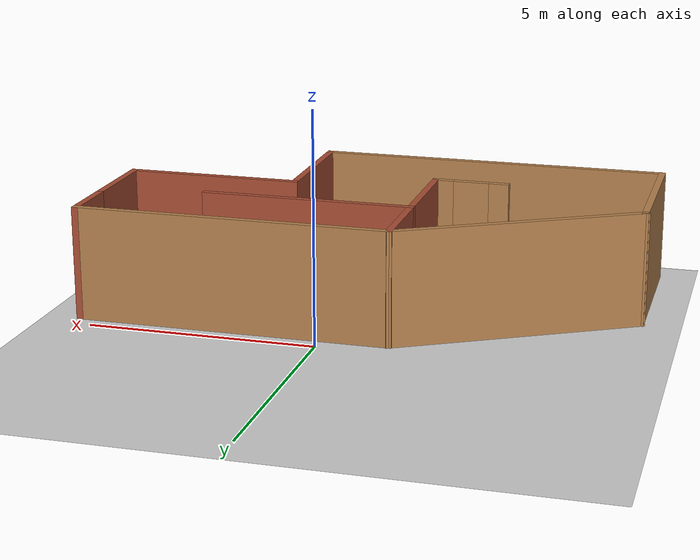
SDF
<sdf version="1.7">
 <world name="default">
  <light name="sun" type="directional">
   <pose>0 0 10 0 -0 0</pose>
   <diffuse>0.8 0.8 0.8 1</diffuse>
   <specular>0.2 0.2 0.2 1</specular>
   <attenuation>
    <range>1000</range>
    <constant>0.9</constant>
    <linear>0.01</linear>
    <quadratic>0.001</quadratic>
   </attenuation>
   <direction>-0.5 0.1 -0.9</direction>
   <spot><inner_angle>0</inner_angle><outer_angle>0</outer_angle><falloff>0</falloff></spot>
  </light>
  <model name="ground_plane">
   <static>1</static>
   <link name="link">
    <collision name="collision">
     <geometry><plane><normal>0 0 1</normal><size>100 100</size></plane></geometry>
     <surface><friction><ode><mu>100</mu><mu2>50</mu2></ode></friction></surface>
    </collision>
    <visual name="visual">
     <cast_shadows>0</cast_shadows>
     <geometry><plane><normal>0 0 1</normal><size>100 100</size></plane></geometry>
     <material>
      <script><uri>file://media/materials/scripts/gazebo.material</uri><name>Gazebo/Grey</name></script>
     </material>
    </visual>
   </link>
  </model>
  <gravity>0 0 -9.8</gravity>
  <magnetic_field>6e-06 2.3e-05 -4.2e-05</magnetic_field>
  <atmosphere type="adiabatic"/>
  <physics type="ode">
   <max_step_size>0.001</max_step_size>
   <real_time_factor>1</real_time_factor>
   <real_time_update_rate>1000</real_time_update_rate>
  </physics>
  <scene><ambient>0.4 0.4 0.4 1</ambient><background>0.7 0.7 0.7 1</background><shadows>1</shadows></scene>
  <audio><device>default</device></audio>
  <spherical_coordinates>
   <surface_model>EARTH_WGS84</surface_model>
   <latitude_deg>0</latitude_deg>
   <longitude_deg>0</longitude_deg>
   <elevation>0</elevation>
   <heading_deg>0</heading_deg>
  </spherical_coordinates>
  <model name="walls">
   <pose>-0.483505 -3.2575 0 0 -0 0</pose>
   <link name="Wall_0">
    <collision name="Wall_0_Collision">
     <geometry><box><size>3.5 0.15 2.5</size></box></geometry>
     <pose>0 0 1.25 0 -0 0</pose>
    </collision>
    <visual name="Wall_0_Visual">
     <pose>0 0 1.25 0 -0 0</pose>
     <geometry><box><size>3.5 0.15 2.5</size></box></geometry>
     <material>
      <script><uri>file://media/materials/scripts/gazebo.material</uri><name>Gazebo/Wood</name></script>
      <ambient>1 1 1 1</ambient>
     </material>
     <meta><layer>0</layer></meta>
    </visual>
    <pose>-5.8365 -1.5075 0 0 -0 -1.5708</pose>
   </link>
   <link name="Wall_1">
    <collision name="Wall_1_Collision">
     <geometry><box><size>8 0.15 2.5</size></box></geometry>
     <pose>0 0 1.25 0 -0 0</pose>
    </collision>
    <visual name="Wall_1_Visual">
     <pose>0 0 1.25 0 -0 0</pose>
     <geometry><box><size>8 0.15 2.5</size></box></geometry>
     <material>
      <script><uri>file://media/materials/scripts/gazebo.material</uri><name>Gazebo/Wood</name></script>
      <ambient>1 1 1 1</ambient>
     </material>
     <meta><layer>0</layer></meta>
    </visual>
    <pose>-1.91149 -3.1825 0 0 -0 0</pose>
   </link>
   <link name="Wall_10">
    <collision name="Wall_10_Collision">
     <geometry><box><size>2.5 0.15 2.5</size></box></geometry>
     <pose>0 0 1.25 0 -0 0</pose>
    </collision>
    <visual name="Wall_10_Visual">
     <pose>0 0 1.25 0 -0 0</pose>
     <geometry><box><size>2.5 0.15 2.5</size></box></geometry>
     <material>
      <script><uri>file://media/materials/scripts/gazebo.material</uri><name>Gazebo/Bricks</name></script>
      <ambient>1 1 1 1</ambient>
     </material>
     <meta><layer>0</layer></meta>
    </visual>
    <pose>-0.986495 -0.1575 0 0 -0 -1.5708</pose>
   </link>
   <link name="Wall_11">
    <pose>-1.78649 -1.3325 0 0 -0 3.14159</pose>
    <visual name="Wall_11_Visual_0">
     <pose>-0.6275 0 1.25 0 -0 0</pose>
     <geometry><box><size>0.495 0.15 2.5</size></box></geometry>
     <material>
      <script><uri>file://media/materials/scripts/gazebo.material</uri><name>Gazebo/Wood</name></script>
      <ambient>1 1 1 1</ambient>
     </material>
     <meta><layer>0</layer></meta>
    </visual>
    <collision name="Wall_11_Collision_0">
     <geometry><box><size>0.495 0.15 2.5</size></box></geometry>
     <pose>-0.6275 0 1.25 0 -0 0</pose>
    </collision>
    <visual name="Wall_11_Visual_1">
     <pose>0.2475 0 0.25 0 -0 0</pose>
     <geometry><box><size>1.255 0.15 0.5</size></box></geometry>
     <material>
      <script><uri>file://media/materials/scripts/gazebo.material</uri><name>Gazebo/Wood</name></script>
      <ambient>1 1 1 1</ambient>
     </material>
     <meta><layer>0</layer></meta>
    </visual>
    <collision name="Wall_11_Collision_1">
     <geometry><box><size>1.255 0.15 0.5</size></box></geometry>
     <pose>0.2475 0 0.25 0 -0 0</pose>
    </collision>
    <visual name="Wall_11_Visual_2">
     <pose>0.6475 0 1.5 0 -0 0</pose>
     <geometry><box><size>0.455 0.15 2</size></box></geometry>
     <material>
      <script><uri>file://media/materials/scripts/gazebo.material</uri><name>Gazebo/Wood</name></script>
      <ambient>1 1 1 1</ambient>
     </material>
     <meta><layer>0</layer></meta>
    </visual>
    <collision name="Wall_11_Collision_2">
     <geometry><box><size>0.455 0.15 2</size></box></geometry>
     <pose>0.6475 0 1.5 0 -0 0</pose>
    </collision>
    <visual name="Wall_11_Visual_3">
     <pose>0.02 0 1.9 0 -0 0</pose>
     <geometry><box><size>0.8 0.15 1.2</size></box></geometry>
     <material>
      <script><uri>file://media/materials/scripts/gazebo.material</uri><name>Gazebo/Wood</name></script>
      <ambient>1 1 1 1</ambient>
     </material>
     <meta><layer>0</layer></meta>
    </visual>
    <collision name="Wall_11_Collision_3">
     <geometry><box><size>0.8 0.15 1.2</size></box></geometry>
     <pose>0.02 0 1.9 0 -0 0</pose>
    </collision>
   </link>
   <link name="Wall_13">
    <collision name="Wall_13_Collision">
     <geometry><box><size>5.7009 0.15 2.5</size></box></geometry>
     <pose>0 0 1.25 0 -0 0</pose>
    </collision>
    <visual name="Wall_13_Visual">
     <pose>0 0 1.25 0 -0 0</pose>
     <geometry><box><size>5.7009 0.15 2.5</size></box></geometry>
     <material>
      <script><uri>file://media/materials/scripts/gazebo.material</uri><name>Gazebo/Wood</name></script>
      <ambient>1 1 1 1</ambient>
     </material>
     <meta><layer>0</layer></meta>
    </visual>
    <pose>-3.41149 1.5175 0 0 -0 0.507973</pose>
   </link>
   <link name="Wall_2">
    <collision name="Wall_2_Collision">
     <geometry><box><size>3 0.15 2.5</size></box></geometry>
     <pose>0 0 1.25 0 -0 0</pose>
    </collision>
    <visual name="Wall_2_Visual">
     <pose>0 0 1.25 0 -0 0</pose>
     <geometry><box><size>3 0.15 2.5</size></box></geometry>
     <material>
      <script><uri>file://media/materials/scripts/gazebo.material</uri><name>Gazebo/Bricks</name></script>
      <ambient>1 1 1 1</ambient>
     </material>
     <meta><layer>0</layer></meta>
    </visual>
    <pose>2.0135 -1.7575 0 0 -0 1.5708</pose>
   </link>
   <link name="Wall_3">
    <collision name="Wall_3_Collision">
     <geometry><box><size>4 0.15 2.5</size></box></geometry>
     <pose>0 0 1.25 0 -0 0</pose>
    </collision>
    <visual name="Wall_3_Visual">
     <pose>0 0 1.25 0 -0 0</pose>
     <geometry><box><size>4 0.15 2.5</size></box></geometry>
     <material>
      <script><uri>file://media/materials/scripts/gazebo.material</uri><name>Gazebo/Bricks</name></script>
      <ambient>1 1 1 1</ambient>
     </material>
     <meta><layer>0</layer></meta>
    </visual>
    <pose>3.93851 -0.3325 0 0 -0 0</pose>
   </link>
   <link name="Wall_4">
    <collision name="Wall_4_Collision">
     <geometry><box><size>2 0.15 2.5</size></box></geometry>
     <pose>0 0 1.25 0 -0 0</pose>
    </collision>
    <visual name="Wall_4_Visual">
     <pose>0 0 1.25 0 -0 0</pose>
     <geometry><box><size>2 0.15 2.5</size></box></geometry>
     <material>
      <script><uri>file://media/materials/scripts/gazebo.material</uri><name>Gazebo/Bricks</name></script>
      <ambient>1 1 1 1</ambient>
     </material>
     <meta><layer>0</layer></meta>
    </visual>
    <pose>5.8635 0.5925 0 0 -0 1.5708</pose>
   </link>
   <link name="Wall_5">
    <collision name="Wall_5_Collision">
     <geometry><box><size>1.5 0.15 2.5</size></box></geometry>
     <pose>0 0 1.25 0 -0 0</pose>
    </collision>
    <visual name="Wall_5_Visual">
     <pose>0 0 1.25 0 -0 0</pose>
     <geometry><box><size>1.5 0.15 2.5</size></box></geometry>
     <material>
      <script><uri>file://media/materials/scripts/gazebo.material</uri><name>Gazebo/Bricks</name></script>
      <ambient>1 1 1 1</ambient>
     </material>
     <meta><layer>0</layer></meta>
    </visual>
    <pose>5.8635 2.1925 0 0 -0 1.5708</pose>
   </link>
   <link name="Wall_6">
    <collision name="Wall_6_Collision">
     <geometry><box><size>7 0.15 2.5</size></box></geometry>
     <pose>0 0 1.25 0 -0 0</pose>
    </collision>
    <visual name="Wall_6_Visual">
     <pose>0 0 1.25 0 -0 0</pose>
     <geometry><box><size>7 0.15 2.5</size></box></geometry>
     <material>
      <script><uri>file://media/materials/scripts/gazebo.material</uri><name>Gazebo/Wood</name></script>
      <ambient>1 1 1 1</ambient>
     </material>
     <meta><layer>0</layer></meta>
    </visual>
    <pose>2.43851 2.8675 0 0 -0 3.14159</pose>
   </link>
   <link name="Wall_7">
    <collision name="Wall_7_Collision">
     <geometry><box><size>2 0.15 2.5</size></box></geometry>
     <pose>0 0 1.25 0 -0 0</pose>
    </collision>
    <visual name="Wall_7_Visual">
     <pose>0 0 1.25 0 -0 0</pose>
     <geometry><box><size>2 0.15 2.5</size></box></geometry>
     <material>
      <script><uri>file://media/materials/scripts/gazebo.material</uri><name>Gazebo/Bricks</name></script>
      <ambient>1 1 1 1</ambient>
     </material>
     <meta><layer>0</layer></meta>
    </visual>
    <pose>-0.986495 1.9425 0 0 -0 -1.5708</pose>
   </link>
   <link name="Wall_8">
    <collision name="Wall_8_Collision">
     <geometry><box><size>4.75 0.15 2.5</size></box></geometry>
     <pose>0 0 1.25 0 -0 0</pose>
    </collision>
    <visual name="Wall_8_Visual">
     <pose>0 0 1.25 0 -0 0</pose>
     <geometry><box><size>4.75 0.15 2.5</size></box></geometry>
     <material>
      <script><uri>file://media/materials/scripts/gazebo.material</uri><name>Gazebo/Bricks</name></script>
      <ambient>1 1 1 1</ambient>
     </material>
     <meta><layer>0</layer></meta>
    </visual>
    <pose>1.3135 1.0175 0 0 -0 0</pose>
   </link>
   <static>1</static>
  </model>
  <model name="beer">
   <link name="link">
    <pose>0 0 0.115 0 -0 0</pose>
    <inertial>
     <mass>0.39</mass>
     <inertia><ixx>0.00058</ixx><ixy>0</ixy><ixz>0</ixz><iyy>0.00058</iyy><iyz>0</iyz><izz>0.00019</izz></inertia>
    </inertial>
    <collision name="collision">
     <geometry><cylinder><radius>0.055</radius><length>0.23</length></cylinder></geometry>
    </collision>
    <visual name="visual">
     <geometry><cylinder><radius>0.055</radius><length>0.23</length></cylinder></geometry>
     <material>
      <script>
       <uri>model://beer/materials/scripts</uri>
       <uri>model://beer/materials/textures</uri>
       <name>Beer/Diffuse</name>
      </script>
     </material>
    </visual>
   </link>
   <pose>-6.0385 -3.29804 -2e-06 1e-06 -0 -9e-06</pose>
  </model>
  <model name="cabinet">
   <static>1</static>
   <link name="cabinet_bottom_plate">
    <inertial>
     <pose>0 0 -1 0 -0 0</pose>
     <inertia><ixx>2.05</ixx><ixy>0</ixy><ixz>0</ixz><iyy>2.05</iyy><iyz>0</iyz><izz>2.05</izz></inertia>
     <mass>25</mass>
    </inertial>
    <collision name="cabinet_bottom_plate_geom">
     <pose>0 0 0.01 0 -0 0</pose>
     <geometry><box><size>0.45 0.45 0.02</size></box></geometry>
    </collision>
    <visual name="cabinet_bottom_plate_geom_visual">
     <pose>0 0 0.01 0 -0 0</pose>
     <geometry><box><size>0.45 0.45 0.02</size></box></geometry>
     <material>
      <script><uri>file://media/materials/scripts/gazebo.material</uri><name>Gazebo/Wood</name></script>
     </material>
    </visual>
    <collision name="cabinet_bottom_plate_geom_cabinet_back_plate">
     <pose>0.235 0 0.51 0 -0 0</pose>
     <geometry><box><size>0.02 0.45 1.02</size></box></geometry>
    </collision>
    <visual name="cabinet_bottom_plate_geom_cabinet_back_plate_visual">
     <pose>0.235 0 0.51 0 -0 0</pose>
     <geometry><box><size>0.02 0.45 1.02</size></box></geometry>
     <material>
      <script><uri>file://media/materials/scripts/gazebo.material</uri><name>Gazebo/Wood</name></script>
     </material>
    </visual>
    <collision name="cabinet_bottom_plate_geom_cabinet_left_plate">
     <pose>0 0.235 0.51 0 -0 0</pose>
     <geometry><box><size>0.45 0.02 1.02</size></box></geometry>
    </collision>
    <visual name="cabinet_bottom_plate_geom_cabinet_left_plate_visual">
     <pose>0 0.235 0.51 0 -0 0</pose>
     <geometry><box><size>0.45 0.02 1.02</size></box></geometry>
     <material>
      <script><uri>file://media/materials/scripts/gazebo.material</uri><name>Gazebo/Wood</name></script>
     </material>
    </visual>
    <collision name="cabinet_bottom_plate_geom_cabinet_middle_plate">
     <pose>0 0 0.51 0 -0 0</pose>
     <geometry><box><size>0.45 0.45 0.02</size></box></geometry>
    </collision>
    <visual name="cabinet_bottom_plate_geom_cabinet_middle_plate_visual">
     <pose>0 0 0.51 0 -0 0</pose>
     <geometry><box><size>0.45 0.45 0.02</size></box></geometry>
     <material>
      <script><uri>file://media/materials/scripts/gazebo.material</uri><name>Gazebo/Wood</name></script>
     </material>
    </visual>
    <collision name="cabinet_bottom_plate_geom_cabinet_right_plate">
     <pose>0 -0.235 0.51 0 -0 0</pose>
     <geometry><box><size>0.45 0.02 1.02</size></box></geometry>
    </collision>
    <visual name="cabinet_bottom_plate_geom_cabinet_right_plate_visual">
     <pose>0 -0.235 0.51 0 -0 0</pose>
     <geometry><box><size>0.45 0.02 1.02</size></box></geometry>
     <material>
      <script><uri>file://media/materials/scripts/gazebo.material</uri><name>Gazebo/Wood</name></script>
     </material>
    </visual>
    <collision name="cabinet_bottom_plate_geom_cabinet_top_plate">
     <pose>0 0 1.01 0 -0 0</pose>
     <geometry><box><size>0.45 0.45 0.02</size></box></geometry>
    </collision>
    <visual name="cabinet_bottom_plate_geom_cabinet_top_plate_visual">
     <pose>0 0 1.01 0 -0 0</pose>
     <geometry><box><size>0.45 0.45 0.02</size></box></geometry>
     <material>
      <script><uri>file://media/materials/scripts/gazebo.material</uri><name>Gazebo/Wood</name></script>
     </material>
    </visual>
   </link>
   <pose>-5.87765 -3.93696 0 0 -0 3.02205</pose>
  </model>
  <model name="wooden_case_metal_peg">
   <frame name="wooden_case::__model__" attached_to="wooden_case::base">
    <pose relative_to="__model__">0 0 0 0 -0 0</pose>
   </frame>
   <link name="wooden_case::base">
    <pose relative_to="wooden_case::__model__">0 0 0.024 0 -0 0</pose>
    <inertial>
     <pose>-0.022184 0 0.171592 0 -0 0</pose>
     <mass>3.96264</mass>
     <inertia>
      <ixx>0.213536</ixx>
      <ixy>0</ixy>
      <ixz>0.000779377</ixz>
      <iyy>0.0708943</iyy>
      <iyz>0</iyz>
      <izz>0.154604</izz>
     </inertia>
    </inertial>
    <collision name="collision_back">
     <pose>-0.053975 0 0.1778 0 -0 0</pose>
     <geometry><box><size>0.01905 0.5461 0.3175</size></box></geometry>
     <surface>
      <contact>
       <poissons_ratio>0.347</poissons_ratio>
       <elastic_modulus>8.8e+09</elastic_modulus>
       <ode><kp>100000</kp><kd>100</kd><max_vel>100</max_vel><min_depth>0.001</min_depth></ode>
      </contact>
      <friction>
       <torsional>
        <coefficient>1</coefficient>
        <use_patch_radius>0</use_patch_radius>
        <surface_radius>0.01</surface_radius>
       </torsional>
      </friction>
     </surface>
    </collision>
    <visual name="visual_back">
     <pose>-0.053975 0 0.1778 0 -0 0</pose>
     <geometry><box><size>0.01905 0.5461 0.3175</size></box></geometry>
     <material>
      <script><uri>file://media/materials/scripts/gazebo.material</uri><name>Gazebo/Wood</name></script>
     </material>
    </visual>
    <collision name="collision_bottom">
     <pose>0 0 0.009525 0 -0 0</pose>
     <geometry><box><size>0.127 0.5842 0.01905</size></box></geometry>
     <surface>
      <contact>
       <poissons_ratio>0.347</poissons_ratio>
       <elastic_modulus>8.8e+09</elastic_modulus>
       <ode><kp>100000</kp><kd>100</kd><max_vel>100</max_vel><min_depth>0.001</min_depth></ode>
      </contact>
      <friction>
       <torsional>
        <coefficient>1</coefficient>
        <use_patch_radius>0</use_patch_radius>
        <surface_radius>0.01</surface_radius>
       </torsional>
      </friction>
     </surface>
    </collision>
    <visual name="visual_bottom">
     <pose>0 0 0.009525 0 -0 0</pose>
     <geometry><box><size>0.127 0.5842 0.01905</size></box></geometry>
     <material>
      <script><uri>file://media/materials/scripts/gazebo.material</uri><name>Gazebo/Wood</name></script>
     </material>
    </visual>
    <collision name="collision_top">
     <pose>0 0 0.346075 0 -0 0</pose>
     <geometry><box><size>0.127 0.5842 0.01905</size></box></geometry>
     <surface>
      <contact>
       <poissons_ratio>0.347</poissons_ratio>
       <elastic_modulus>8.8e+09</elastic_modulus>
       <ode><kp>100000</kp><kd>100</kd><max_vel>100</max_vel><min_depth>0.001</min_depth></ode>
      </contact>
      <friction>
       <torsional>
        <coefficient>1</coefficient>
        <use_patch_radius>0</use_patch_radius>
        <surface_radius>0.01</surface_radius>
       </torsional>
      </friction>
     </surface>
    </collision>
    <visual name="visual_top">
     <pose>0 0 0.346075 0 -0 0</pose>
     <geometry><box><size>0.127 0.5842 0.01905</size></box></geometry>
     <material>
      <script><uri>file://media/materials/scripts/gazebo.material</uri><name>Gazebo/Wood</name></script>
     </material>
    </visual>
    <collision name="collision_left">
     <pose>0 -0.282575 0.1778 0 -0 0</pose>
     <geometry><box><size>0.127 0.01905 0.3175</size></box></geometry>
     <surface>
      <contact>
       <poissons_ratio>0.347</poissons_ratio>
       <elastic_modulus>8.8e+09</elastic_modulus>
       <ode><kp>100000</kp><kd>100</kd><max_vel>100</max_vel><min_depth>0.001</min_depth></ode>
      </contact>
      <friction>
       <torsional>
        <coefficient>1</coefficient>
        <use_patch_radius>0</use_patch_radius>
        <surface_radius>0.01</surface_radius>
       </torsional>
      </friction>
     </surface>
    </collision>
    <visual name="visual_left">
     <pose>0 -0.282575 0.1778 0 -0 0</pose>
     <geometry><box><size>0.127 0.01905 0.3175</size></box></geometry>
     <material>
      <script><uri>file://media/materials/scripts/gazebo.material</uri><name>Gazebo/Wood</name></script>
     </material>
    </visual>
    <collision name="collision_right">
     <pose>0 0.282575 0.1778 0 -0 0</pose>
     <geometry><box><size>0.127 0.01905 0.3175</size></box></geometry>
     <surface>
      <contact>
       <poissons_ratio>0.347</poissons_ratio>
       <elastic_modulus>8.8e+09</elastic_modulus>
       <ode><kp>100000</kp><kd>100</kd><max_vel>100</max_vel><min_depth>0.001</min_depth></ode>
      </contact>
      <friction>
       <torsional>
        <coefficient>1</coefficient>
        <use_patch_radius>0</use_patch_radius>
        <surface_radius>0.01</surface_radius>
       </torsional>
      </friction>
     </surface>
    </collision>
    <visual name="visual_right">
     <pose>0 0.282575 0.1778 0 -0 0</pose>
     <geometry><box><size>0.127 0.01905 0.3175</size></box></geometry>
     <material>
      <script><uri>file://media/materials/scripts/gazebo.material</uri><name>Gazebo/Wood</name></script>
     </material>
    </visual>
    <collision name="collision_block_left">
     <pose>0.0095 -0.2151 -0.012 0 -0 0</pose>
     <geometry><box><size>0.108 0.05 0.024</size></box></geometry>
     <surface>
      <contact>
       <poissons_ratio>0.347</poissons_ratio>
       <elastic_modulus>8.8e+09</elastic_modulus>
       <ode><kp>100000</kp><kd>100</kd><max_vel>100</max_vel><min_depth>0.001</min_depth></ode>
      </contact>
      <friction>
       <torsional>
        <coefficient>1</coefficient>
        <use_patch_radius>0</use_patch_radius>
        <surface_radius>0.01</surface_radius>
       </torsional>
      </friction>
     </surface>
    </collision>
    <visual name="visual_block_left">
     <pose>0.0095 -0.2151 -0.012 0 -0 0</pose>
     <geometry><box><size>0.108 0.05 0.024</size></box></geometry>
     <material>
      <script><uri>file://media/materials/scripts/gazebo.material</uri><name>Gazebo/Wood</name></script>
     </material>
    </visual>
    <collision name="collision_block_right">
     <pose>0.0095 0.2151 -0.012 0 -0 0</pose>
     <geometry><box><size>0.108 0.05 0.024</size></box></geometry>
     <surface>
      <contact>
       <poissons_ratio>0.347</poissons_ratio>
       <elastic_modulus>8.8e+09</elastic_modulus>
       <ode><kp>100000</kp><kd>100</kd><max_vel>100</max_vel><min_depth>0.001</min_depth></ode>
      </contact>
      <friction>
       <torsional>
        <coefficient>1</coefficient>
        <use_patch_radius>0</use_patch_radius>
        <surface_radius>0.01</surface_radius>
       </torsional>
      </friction>
     </surface>
    </collision>
    <visual name="visual_block_right">
     <pose>0.0095 0.2151 -0.012 0 -0 0</pose>
     <geometry><box><size>0.108 0.05 0.024</size></box></geometry>
     <material>
      <script><uri>file://media/materials/scripts/gazebo.material</uri><name>Gazebo/Wood</name></script>
     </material>
    </visual>
   </link>
   <link name="wooden_case::lid">
    <pose relative_to="wooden_case::__model__">0.243775 0 0.009525 0 -0 0</pose>
    <inertial>
     <mass>1.97874</mass>
     <inertia>
      <ixx>0.0563367</ixx>
      <ixy>0</ixy>
      <ixz>0</ixz>
      <iyy>0.020911</iyy>
      <iyz>0</iyz>
      <izz>0.0771281</izz>
     </inertia>
    </inertial>
    <collision name="collision">
     <geometry><box><size>0.3556 0.5842 0.01905</size></box></geometry>
     <surface>
      <contact>
       <poissons_ratio>0.347</poissons_ratio>
       <elastic_modulus>8.8e+09</elastic_modulus>
       <ode><kp>100000</kp><kd>100</kd><max_vel>100</max_vel><min_depth>0.001</min_depth></ode>
      </contact>
      <friction>
       <torsional>
        <coefficient>1</coefficient>
        <use_patch_radius>0</use_patch_radius>
        <surface_radius>0.01</surface_radius>
       </torsional>
      </friction>
     </surface>
    </collision>
    <visual name="visual">
     <geometry><box><size>0.3556 0.5842 0.01905</size></box></geometry>
     <material>
      <script><uri>file://media/materials/scripts/gazebo.material</uri><name>Gazebo/Wood</name></script>
     </material>
    </visual>
    <visual name="tee_nut_1">
     <pose>0.122 -0.216 0 0 -0 0</pose>
     <geometry><cylinder><radius>0.00635</radius><length>0.0192405</length></cylinder></geometry>
     <material>
      <script><uri>file://media/materials/scripts/gazebo.material</uri><name>Gazebo/Grey</name></script>
     </material>
    </visual>
    <visual name="tee_nut_2">
     <pose>0.122 -0.088 0 0 -0 0</pose>
     <geometry><cylinder><radius>0.00635</radius><length>0.0192405</length></cylinder></geometry>
     <material>
      <script><uri>file://media/materials/scripts/gazebo.material</uri><name>Gazebo/Grey</name></script>
     </material>
    </visual>
    <visual name="tee_nut_3">
     <pose>0.122 0.088 0 0 -0 0</pose>
     <geometry><cylinder><radius>0.00635</radius><length>0.0192405</length></cylinder></geometry>
     <material>
      <script><uri>file://media/materials/scripts/gazebo.material</uri><name>Gazebo/Grey</name></script>
     </material>
    </visual>
    <visual name="tee_nut_4">
     <pose>0.122 0.216 0 0 -0 0</pose>
     <geometry><cylinder><radius>0.00635</radius><length>0.0192405</length></cylinder></geometry>
     <material>
      <script><uri>file://media/materials/scripts/gazebo.material</uri><name>Gazebo/Grey</name></script>
     </material>
    </visual>
   </link>
   <joint name="wooden_case::lid_hinge" type="revolute">
    <pose>-0.1778 0 0.01905 0 -0 0</pose>
    <parent>wooden_case::base</parent>
    <child>wooden_case::lid</child>
    <axis>
     <xyz>0 1 0</xyz>
     <limit><upper>0.523599</upper><lower>-1.5708</lower></limit>
     <dynamics><spring_reference>0</spring_reference><spring_stiffness>0</spring_stiffness></dynamics>
    </axis>
   </joint>
   <frame name="peg::__model__" attached_to="peg::link">
    <pose relative_to="__model__">0.365774 0.216 0.01905 0 -0 0</pose>
   </frame>
   <link name="peg::link">
    <pose relative_to="peg::__model__">0 0 0.031 0 -0 0</pose>
    <inertial>
     <mass>0.0121</mass>
     <inertia>
      <ixx>3.90898e-06</ixx>
      <ixy>0</ixy>
      <ixz>0</ixz>
      <iyy>3.90898e-06</iyy>
      <iyz>0</iyz>
      <izz>6.58845e-08</izz>
     </inertia>
    </inertial>
    <collision name="collision">
     <geometry><cylinder><radius>0.0033</radius><length>0.062</length></cylinder></geometry>
     <surface>
      <contact>
       <poissons_ratio>0.305</poissons_ratio>
       <elastic_modulus>2e+11</elastic_modulus>
       <ode><kp>100000</kp><kd>100</kd><max_vel>100</max_vel><min_depth>0.001</min_depth></ode>
      </contact>
      <friction>
       <torsional>
        <coefficient>1</coefficient>
        <use_patch_radius>0</use_patch_radius>
        <surface_radius>0.01</surface_radius>
       </torsional>
      </friction>
     </surface>
    </collision>
    <visual name="visual">
     <geometry><cylinder><radius>0.0033</radius><length>0.062</length></cylinder></geometry>
     <material>
      <script><uri>file://media/materials/scripts/gazebo.material</uri><name>Gazebo/Grey</name></script>
     </material>
    </visual>
   </link>
   <joint name="case_peg" type="revolute">
    <child>peg::link</child>
    <parent>wooden_case::lid</parent>
    <axis>
     <xyz>0 0 1</xyz>
     <limit><upper>0</upper><lower>0</lower></limit>
     <dynamics><spring_reference>0</spring_reference><spring_stiffness>0</spring_stiffness></dynamics>
    </axis>
   </joint>
   <pose>-5.4928 -5.31082 -0.001057 0 -0.00043 0</pose>
  </model>
 </world>
</sdf>
